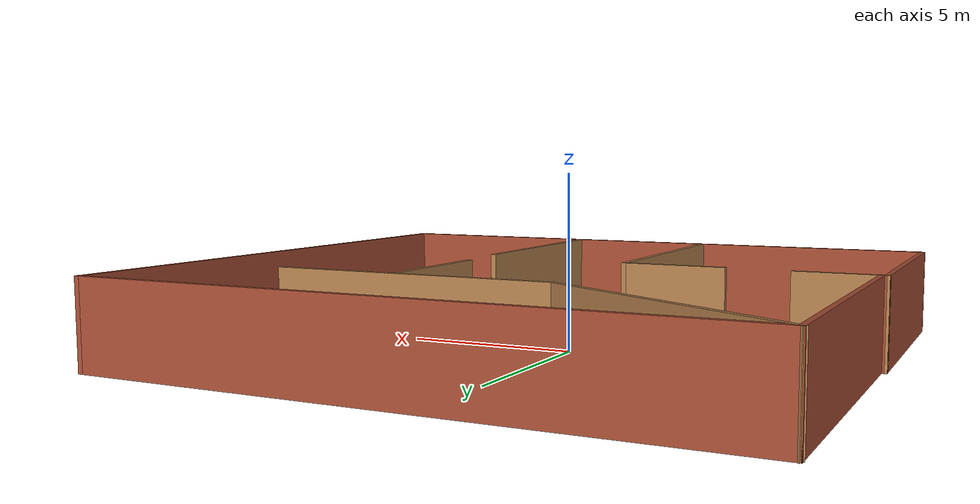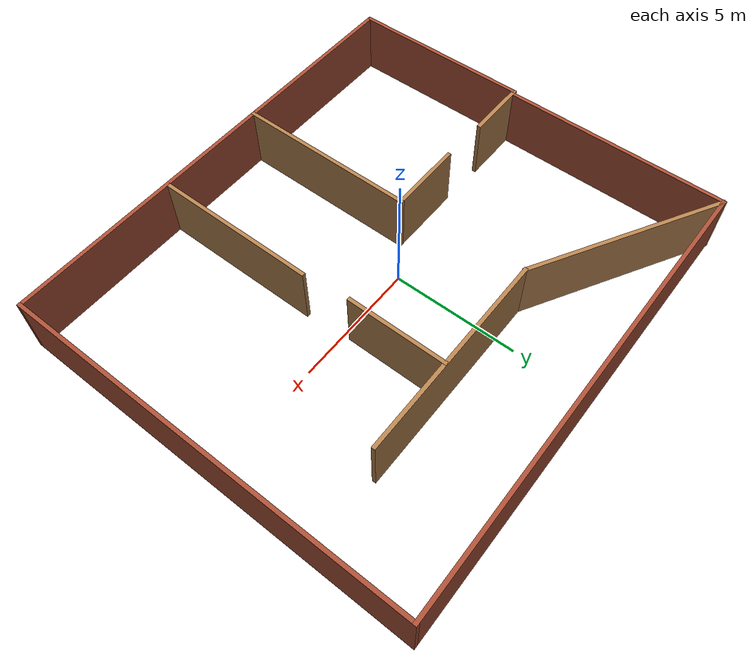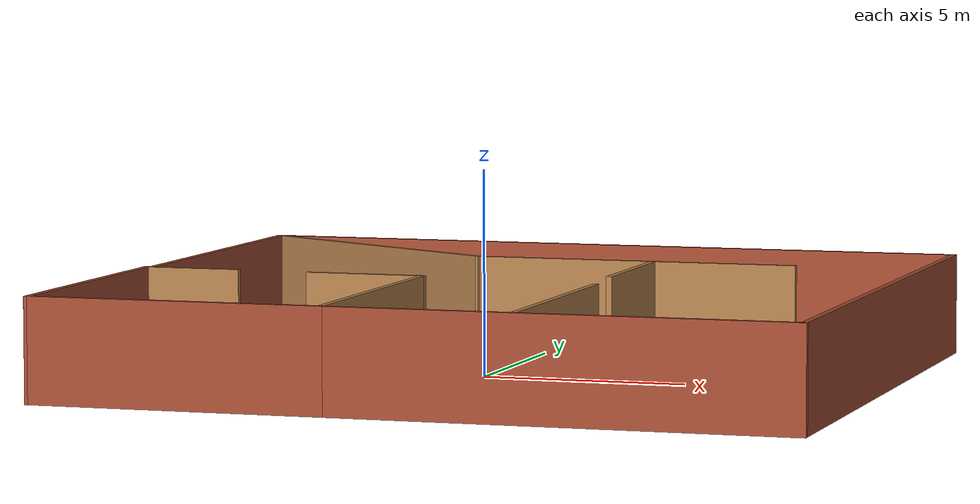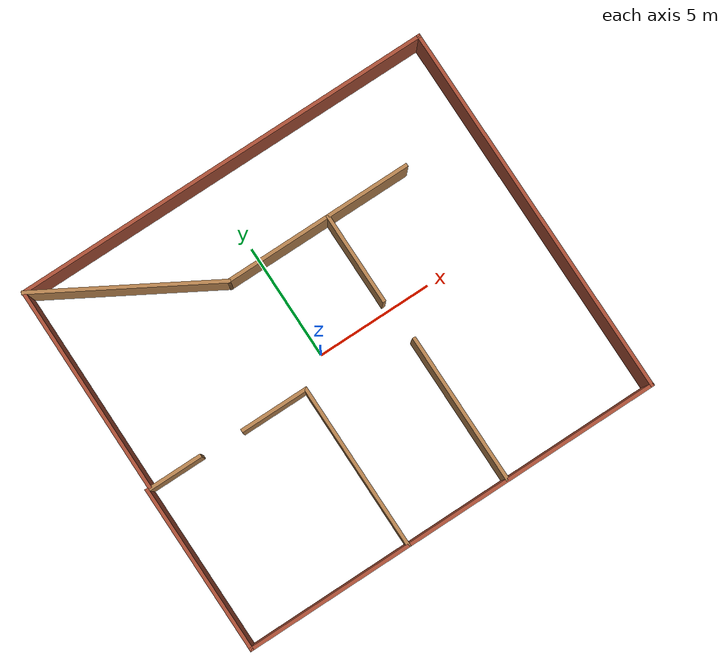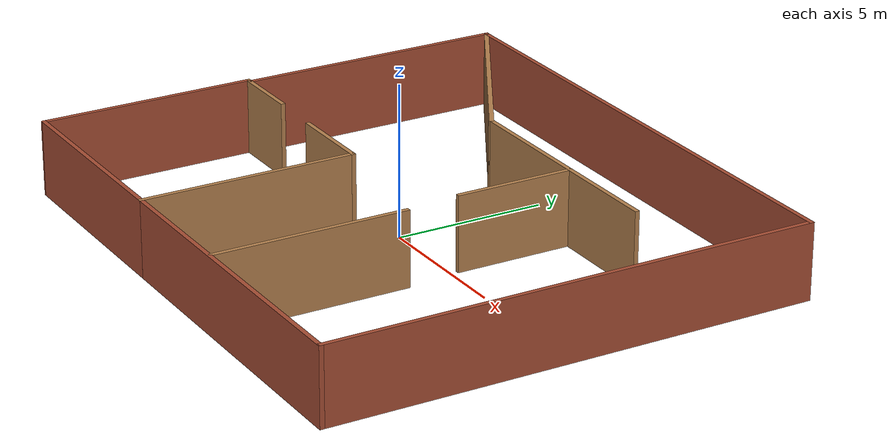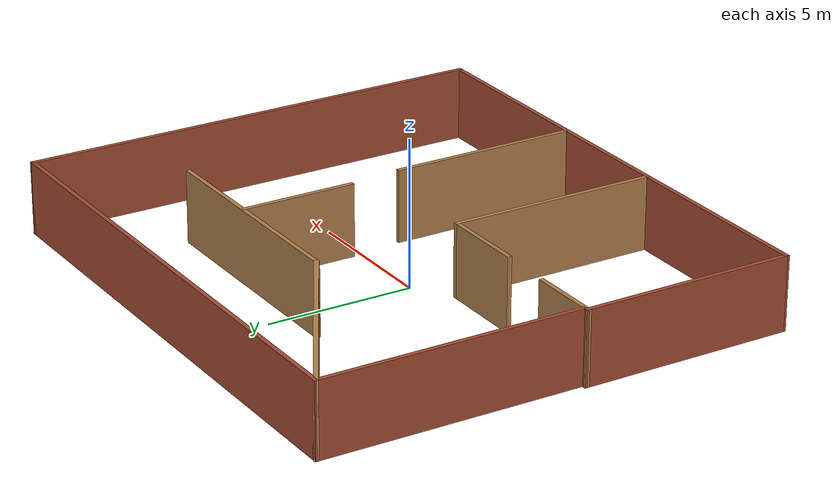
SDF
<?xml version='1.0'?>
<sdf version='1.7'>
  <model name='casa_marco'>
    <pose>0.696137 0.048764 0 0 -0 0</pose>
    <link name='Wall_0'>
      <collision name='Wall_0_Collision'>
        <geometry>
          <box>
            <size>9 0.15 2.5</size>
          </box>
        </geometry>
        <pose>0 0 1.25 0 -0 0</pose>
      </collision>
      <visual name='Wall_0_Visual'>
        <pose>0 0 1.25 0 -0 0</pose>
        <geometry>
          <box>
            <size>9 0.15 2.5</size>
          </box>
        </geometry>
        <material>
          <script>
            <uri>file://media/materials/scripts/gazebo.material</uri>
            <name>Gazebo/Bricks</name>
          </script>
          <ambient>1 1 1 1</ambient>
        </material>
        <meta>
          <layer>0</layer>
        </meta>
      </visual>
      <pose>-8.98266 3.61145 0 0 -0 1.5708</pose>
    </link>
    <link name='Wall_1'>
      <collision name='Wall_1_Collision'>
        <geometry>
          <box>
            <size>18.25 0.15 2.5</size>
          </box>
        </geometry>
        <pose>0 0 1.25 0 -0 0</pose>
      </collision>
      <visual name='Wall_1_Visual'>
        <pose>0 0 1.25 0 -0 0</pose>
        <geometry>
          <box>
            <size>18.25 0.15 2.5</size>
          </box>
        </geometry>
        <material>
          <script>
            <uri>file://media/materials/scripts/gazebo.material</uri>
            <name>Gazebo/Bricks</name>
          </script>
          <ambient>1 1 1 1</ambient>
        </material>
        <meta>
          <layer>0</layer>
        </meta>
      </visual>
      <pose>0.067341 8.03645 0 0 -0 0</pose>
    </link>
    <link name='Wall_10'>
      <collision name='Wall_10_Collision'>
        <geometry>
          <box>
            <size>7.25 0.15 2.5</size>
          </box>
        </geometry>
        <pose>0 0 1.25 0 -0 0</pose>
      </collision>
      <visual name='Wall_10_Visual'>
        <pose>0 0 1.25 0 -0 0</pose>
        <geometry>
          <box>
            <size>7.25 0.15 2.5</size>
          </box>
        </geometry>
        <material>
          <script>
            <uri>file://media/materials/scripts/gazebo.material</uri>
            <name>Gazebo/Bricks</name>
          </script>
          <ambient>1 1 1 1</ambient>
        </material>
        <meta>
          <layer>0</layer>
        </meta>
      </visual>
      <pose>-5.53266 -8.06355 0 0 -0 3.14159</pose>
    </link>
    <link name='Wall_11'>
      <collision name='Wall_11_Collision'>
        <geometry>
          <box>
            <size>7.32312 0.15 2.5</size>
          </box>
        </geometry>
        <pose>0 0 1.25 0 -0 0</pose>
      </collision>
      <visual name='Wall_11_Visual'>
        <pose>0 0 1.25 0 -0 0</pose>
        <geometry>
          <box>
            <size>7.32312 0.15 2.5</size>
          </box>
        </geometry>
        <material>
          <script>
            <uri>file://media/materials/scripts/gazebo.material</uri>
            <name>Gazebo/Bricks</name>
          </script>
          <ambient>1 1 1 1</ambient>
        </material>
        <meta>
          <layer>0</layer>
        </meta>
      </visual>
      <pose>-9.09982 -4.47703 0 0 -0 1.57558</pose>
    </link>
    <link name='Wall_13'>
      <collision name='Wall_13_Collision'>
        <geometry>
          <box>
            <size>8 0.15 2.5</size>
          </box>
        </geometry>
        <pose>0 0 1.25 0 -0 0</pose>
      </collision>
      <visual name='Wall_13_Visual'>
        <pose>0 0 1.25 0 -0 0</pose>
        <geometry>
          <box>
            <size>8 0.15 2.5</size>
          </box>
        </geometry>
        <material>
          <script>
            <uri>file://media/materials/scripts/gazebo.material</uri>
            <name>Gazebo/Wood</name>
          </script>
          <ambient>1 1 1 1</ambient>
        </material>
        <meta>
          <layer>0</layer>
        </meta>
      </visual>
      <pose>-5.58351 6.07395 0 0 -0 -0.523599</pose>
    </link>
    <link name='Wall_14'>
      <collision name='Wall_14_Collision'>
        <geometry>
          <box>
            <size>8.25 0.15 2.5</size>
          </box>
        </geometry>
        <pose>0 0 1.25 0 -0 0</pose>
      </collision>
      <visual name='Wall_14_Visual'>
        <pose>0 0 1.25 0 -0 0</pose>
        <geometry>
          <box>
            <size>8.25 0.15 2.5</size>
          </box>
        </geometry>
        <material>
          <script>
            <uri>file://media/materials/scripts/gazebo.material</uri>
            <name>Gazebo/Wood</name>
          </script>
          <ambient>1 1 1 1</ambient>
        </material>
        <meta>
          <layer>0</layer>
        </meta>
      </visual>
      <pose>1.86564 4.11145 0 0 -0 0</pose>
    </link>
    <link name='Wall_16'>
      <collision name='Wall_16_Collision'>
        <geometry>
          <box>
            <size>4 0.15 2.5</size>
          </box>
        </geometry>
        <pose>0 0 1.25 0 -0 0</pose>
      </collision>
      <visual name='Wall_16_Visual'>
        <pose>0 0 1.25 0 -0 0</pose>
        <geometry>
          <box>
            <size>4 0.15 2.5</size>
          </box>
        </geometry>
        <material>
          <script>
            <uri>file://media/materials/scripts/gazebo.material</uri>
            <name>Gazebo/Wood</name>
          </script>
          <ambient>1 1 1 1</ambient>
        </material>
        <meta>
          <layer>0</layer>
        </meta>
      </visual>
      <pose>2.35193 2.17445 0 0 -0 -1.5708</pose>
    </link>
    <link name='Wall_18'>
      <collision name='Wall_18_Collision'>
        <geometry>
          <box>
            <size>6.5 0.15 2.5</size>
          </box>
        </geometry>
        <pose>0 0 1.25 0 -0 0</pose>
      </collision>
      <visual name='Wall_18_Visual'>
        <pose>0 0 1.25 0 -0 0</pose>
        <geometry>
          <box>
            <size>6.5 0.15 2.5</size>
          </box>
        </geometry>
        <material>
          <script>
            <uri>file://media/materials/scripts/gazebo.material</uri>
            <name>Gazebo/Wood</name>
          </script>
          <ambient>1 1 1 1</ambient>
        </material>
        <meta>
          <layer>0</layer>
        </meta>
      </visual>
      <pose>2.53547 -4.82651 0 0 -0 -1.5708</pose>
    </link>
    <link name='Wall_2'>
      <collision name='Wall_2_Collision'>
        <geometry>
          <box>
            <size>16.25 0.15 2.5</size>
          </box>
        </geometry>
        <pose>0 0 1.25 0 -0 0</pose>
      </collision>
      <visual name='Wall_2_Visual'>
        <pose>0 0 1.25 0 -0 0</pose>
        <geometry>
          <box>
            <size>16.25 0.15 2.5</size>
          </box>
        </geometry>
        <material>
          <script>
            <uri>file://media/materials/scripts/gazebo.material</uri>
            <name>Gazebo/Bricks</name>
          </script>
          <ambient>1 1 1 1</ambient>
        </material>
        <meta>
          <layer>0</layer>
        </meta>
      </visual>
      <pose>9.11734 -0.013547 0 0 -0 -1.5708</pose>
    </link>
    <link name='Wall_3'>
      <collision name='Wall_3_Collision'>
        <geometry>
          <box>
            <size>11.25 0.15 2.5</size>
          </box>
        </geometry>
        <pose>0 0 1.25 0 -0 0</pose>
      </collision>
      <visual name='Wall_3_Visual'>
        <pose>0 0 1.25 0 -0 0</pose>
        <geometry>
          <box>
            <size>11.25 0.15 2.5</size>
          </box>
        </geometry>
        <material>
          <script>
            <uri>file://media/materials/scripts/gazebo.material</uri>
            <name>Gazebo/Bricks</name>
          </script>
          <ambient>1 1 1 1</ambient>
        </material>
        <meta>
          <layer>0</layer>
        </meta>
      </visual>
      <pose>3.56734 -8.06355 0 0 -0 3.14159</pose>
    </link>
    <link name='Wall_4'>
      <collision name='Wall_4_Collision'>
        <geometry>
          <box>
            <size>7.25 0.15 2.5</size>
          </box>
        </geometry>
        <pose>0 0 1.25 0 -0 0</pose>
      </collision>
      <visual name='Wall_4_Visual'>
        <pose>0 0 1.25 0 -0 0</pose>
        <geometry>
          <box>
            <size>7.25 0.15 2.5</size>
          </box>
        </geometry>
        <material>
          <script>
            <uri>file://media/materials/scripts/gazebo.material</uri>
            <name>Gazebo/Wood</name>
          </script>
          <ambient>1 1 1 1</ambient>
        </material>
        <meta>
          <layer>0</layer>
        </meta>
      </visual>
      <pose>-1.98266 -4.51355 0 0 -0 1.5708</pose>
    </link>
    <link name='Wall_5'>
      <collision name='Wall_5_Collision'>
        <geometry>
          <box>
            <size>3 0.15 2.5</size>
          </box>
        </geometry>
        <pose>0 0 1.25 0 -0 0</pose>
      </collision>
      <visual name='Wall_5_Visual'>
        <pose>0 0 1.25 0 -0 0</pose>
        <geometry>
          <box>
            <size>3 0.15 2.5</size>
          </box>
        </geometry>
        <material>
          <script>
            <uri>file://media/materials/scripts/gazebo.material</uri>
            <name>Gazebo/Wood</name>
          </script>
          <ambient>1 1 1 1</ambient>
        </material>
        <meta>
          <layer>0</layer>
        </meta>
      </visual>
      <pose>-3.40766 -0.963547 0 0 -0 3.14159</pose>
    </link>
    <link name='Wall_8'>
      <collision name='Wall_8_Collision'>
        <geometry>
          <box>
            <size>2.5 0.15 2.5</size>
          </box>
        </geometry>
        <pose>0 0 1.25 0 -0 0</pose>
      </collision>
      <visual name='Wall_8_Visual'>
        <pose>0 0 1.25 0 -0 0</pose>
        <geometry>
          <box>
            <size>2.5 0.15 2.5</size>
          </box>
        </geometry>
        <material>
          <script>
            <uri>file://media/materials/scripts/gazebo.material</uri>
            <name>Gazebo/Wood</name>
          </script>
          <ambient>1 1 1 1</ambient>
        </material>
        <meta>
          <layer>0</layer>
        </meta>
      </visual>
      <pose>-7.94198 -0.890512 0 0 -0 3.14159</pose>
    </link>
    <static>1</static>
  </model>
</sdf>
